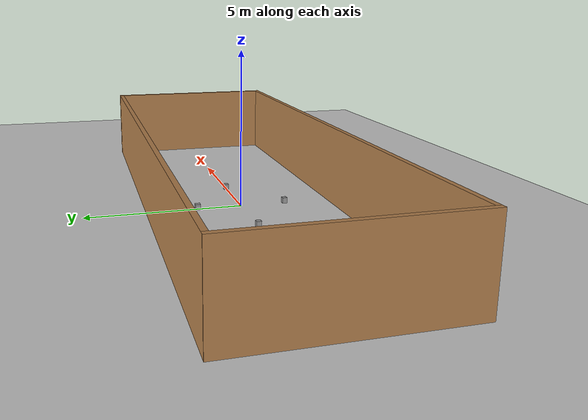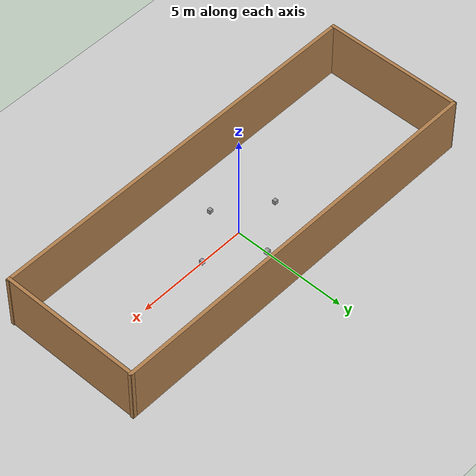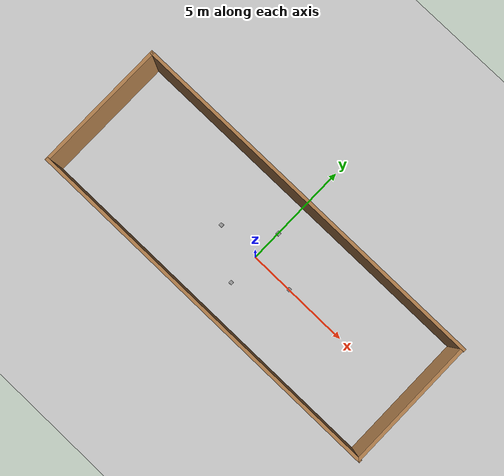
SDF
<sdf version="1.6">
 <world name="default">
  <light name="sun" type="directional">
   <pose>0 0 10 0 -0 0</pose>
   <diffuse>0.8 0.8 0.8 1</diffuse>
   <specular>0.2 0.2 0.2 1</specular>
   <attenuation>
    <range>1000</range>
    <constant>0.9</constant>
    <linear>0.01</linear>
    <quadratic>0.001</quadratic>
   </attenuation>
   <direction>-0.5 0.1 -0.9</direction>
  </light>
  <model name="ground_plane">
   <static>1</static>
   <link name="link">
    <collision name="collision">
     <geometry><plane><normal>0 0 1</normal><size>100 100</size></plane></geometry>
     <surface>
      <contact><collide_bitmask>65535</collide_bitmask></contact>
      <friction><ode><mu>100</mu><mu2>50</mu2></ode></friction>
     </surface>
    </collision>
    <visual name="visual">
     <cast_shadows>0</cast_shadows>
     <geometry><plane><normal>0 0 1</normal><size>100 100</size></plane></geometry>
     <material>
      <script><uri>file://media/materials/scripts/gazebo.material</uri><name>Gazebo/Grey</name></script>
     </material>
    </visual>
   </link>
  </model>
  <gravity>0 0 -9.8</gravity>
  <magnetic_field>6e-06 2.3e-05 -4.2e-05</magnetic_field>
  <atmosphere type="adiabatic"/>
  <physics name="default_physics" default="0" type="ode">
   <max_step_size>0.001</max_step_size>
   <real_time_factor>1</real_time_factor>
   <real_time_update_rate>1000</real_time_update_rate>
  </physics>
  <scene><ambient>0.4 0.4 0.4 1</ambient><background>0.7 0.7 0.7 1</background><shadows>1</shadows></scene>
  <spherical_coordinates>
   <surface_model>EARTH_WGS84</surface_model>
   <latitude_deg>0</latitude_deg>
   <longitude_deg>0</longitude_deg>
   <elevation>0</elevation>
   <heading_deg>0</heading_deg>
  </spherical_coordinates>
  <model name="Competition_map.world">
   <pose>-0.033405 -0.02331 0 0 -0 0</pose>
   <link name="Wall_10">
    <collision name="Wall_10_Collision">
     <geometry><box><size>6.18858 0.15 2.5</size></box></geometry>
     <pose>0 0 1.25 0 -0 0</pose>
    </collision>
    <visual name="Wall_10_Visual">
     <pose>0 0 1.25 0 -0 0</pose>
     <geometry><box><size>6.18858 0.15 2.5</size></box></geometry>
     <material>
      <script><uri>file://media/materials/scripts/gazebo.material</uri><name>Gazebo/Wood</name></script>
      <ambient>1 1 1 1</ambient>
     </material>
     <meta><layer>0</layer></meta>
    </visual>
    <pose>-8.64314 0 0 0 -0 -1.5708</pose>
   </link>
   <link name="Wall_11">
    <collision name="Wall_11_Collision">
     <geometry><box><size>17.4011 0.15 2.5</size></box></geometry>
     <pose>0 0 1.25 0 -0 0</pose>
    </collision>
    <visual name="Wall_11_Visual">
     <pose>0 0 1.25 0 -0 0</pose>
     <geometry><box><size>17.4011 0.15 2.5</size></box></geometry>
     <material>
      <script><uri>file://media/materials/scripts/gazebo.material</uri><name>Gazebo/Wood</name></script>
      <ambient>1 1 1 1</ambient>
     </material>
     <meta><layer>0</layer></meta>
    </visual>
    <pose>0.01759 -3.01929 0 0 -0 0</pose>
   </link>
   <link name="Wall_12">
    <collision name="Wall_12_Collision">
     <geometry><box><size>6.18858 0.15 2.5</size></box></geometry>
     <pose>0 0 1.25 0 -0 0</pose>
    </collision>
    <visual name="Wall_12_Visual">
     <pose>0 0 1.25 0 -0 0</pose>
     <geometry><box><size>6.18858 0.15 2.5</size></box></geometry>
     <material>
      <script><uri>file://media/materials/scripts/gazebo.material</uri><name>Gazebo/Wood</name></script>
      <ambient>1 1 1 1</ambient>
     </material>
     <meta><layer>0</layer></meta>
    </visual>
    <pose>8.60796 0 0 0 -0 1.5708</pose>
   </link>
   <link name="Wall_13">
    <collision name="Wall_13_Collision">
     <geometry><box><size>17.4011 0.15 2.5</size></box></geometry>
     <pose>0 0 1.25 0 -0 0</pose>
    </collision>
    <visual name="Wall_13_Visual">
     <pose>0 0 1.25 0 -0 0</pose>
     <geometry><box><size>17.4011 0.15 2.5</size></box></geometry>
     <material>
      <script><uri>file://media/materials/scripts/gazebo.material</uri><name>Gazebo/Wood</name></script>
      <ambient>1 1 1 1</ambient>
     </material>
     <meta><layer>0</layer></meta>
    </visual>
    <pose>0.01759 3.01929 0 0 -0 3.14159</pose>
   </link>
   <static>1</static>
  </model>
  <model name="unit_box">
   <pose>0.007304 1.42545 0.090008 5e-06 -1e-06 -0.000126</pose>
   <link name="link">
    <inertial>
     <mass>1</mass>
     <inertia>
      <ixx>0.166667</ixx>
      <ixy>0</ixy>
      <ixz>0</ixz>
      <iyy>0.166667</iyy>
      <iyz>0</iyz>
      <izz>0.166667</izz>
     </inertia>
    </inertial>
    <collision name="collision">
     <geometry><box><size>0.178169 0.169943 0.180016</size></box></geometry>
    </collision>
    <visual name="visual">
     <geometry><box><size>0.178169 0.169943 0.180016</size></box></geometry>
     <material>
      <script><name>Gazebo/Grey</name><uri>file://media/materials/scripts/gazebo.material</uri></script>
     </material>
    </visual>
   </link>
  </model>
  <model name="unit_box_clone">
   <pose>0.007085 -1.48008 0.090008 -4e-06 1e-06 -0.000117</pose>
   <link name="link">
    <inertial>
     <mass>1</mass>
     <inertia>
      <ixx>0.166667</ixx>
      <ixy>0</ixy>
      <ixz>0</ixz>
      <iyy>0.166667</iyy>
      <iyz>0</iyz>
      <izz>0.166667</izz>
     </inertia>
    </inertial>
    <collision name="collision">
     <geometry><box><size>0.154562 0.156899 0.180016</size></box></geometry>
    </collision>
    <visual name="visual">
     <geometry><box><size>0.154562 0.156899 0.180016</size></box></geometry>
     <material>
      <script><name>Gazebo/Grey</name><uri>file://media/materials/scripts/gazebo.material</uri></script>
     </material>
    </visual>
   </link>
  </model>
  <model name="unit_box_clone_0">
   <pose>-2.00107 -0.00106 0.090008 -1e-06 4e-06 -0.000118</pose>
   <link name="link">
    <inertial>
     <mass>1</mass>
     <inertia>
      <ixx>0.166667</ixx>
      <ixy>0</ixy>
      <ixz>0</ixz>
      <iyy>0.166667</iyy>
      <iyz>0</iyz>
      <izz>0.166667</izz>
     </inertia>
    </inertial>
    <collision name="collision">
     <geometry><box><size>0.154562 0.156899 0.180016</size></box></geometry>
    </collision>
    <visual name="visual">
     <geometry><box><size>0.154562 0.156899 0.180016</size></box></geometry>
     <material>
      <script><name>Gazebo/Grey</name><uri>file://media/materials/scripts/gazebo.material</uri></script>
     </material>
    </visual>
   </link>
  </model>
  <model name="unit_box_clone_1">
   <pose>1.9951 0.006263 0.090008 -1e-06 -4e-06 -0.00012</pose>
   <link name="link">
    <inertial>
     <mass>1</mass>
     <inertia>
      <ixx>0.166667</ixx>
      <ixy>0</ixy>
      <ixz>0</ixz>
      <iyy>0.166667</iyy>
      <iyz>0</iyz>
      <izz>0.166667</izz>
     </inertia>
    </inertial>
    <collision name="collision">
     <geometry><box><size>0.154562 0.156899 0.180016</size></box></geometry>
    </collision>
    <visual name="visual">
     <geometry><box><size>0.154562 0.156899 0.180016</size></box></geometry>
     <material>
      <script><name>Gazebo/Grey</name><uri>file://media/materials/scripts/gazebo.material</uri></script>
     </material>
    </visual>
   </link>
  </model>
  <light name="user_directional_light_0" type="directional">
   <pose>12.4759 -7.27356 1 0 -0 0</pose>
   <diffuse>0.5 0.5 0.5 1</diffuse>
   <specular>0.1 0.1 0.1 1</specular>
   <direction>0.1 0.1 -0.9</direction>
   <attenuation>
    <range>20</range>
    <constant>0.5</constant>
    <linear>0.01</linear>
    <quadratic>0.001</quadratic>
   </attenuation>
  </light>
  <light name="user_point_light_0" type="point">
   <pose>12.5476 -6.97731 1 0 -0 0</pose>
   <diffuse>0.5 0.5 0.5 1</diffuse>
   <specular>0.1 0.1 0.1 1</specular>
   <attenuation>
    <range>20</range>
    <constant>0.5</constant>
    <linear>0.01</linear>
    <quadratic>0.001</quadratic>
   </attenuation>
   <cast_shadows>0</cast_shadows>
   <direction>0 0 -1</direction>
  </light>
  <light name="user_directional_light_1" type="directional">
   <pose>-0.282872 0.367566 1 0 -0 0</pose>
   <diffuse>0.5 0.5 0.5 1</diffuse>
   <specular>0.1 0.1 0.1 1</specular>
   <direction>0.1 0.1 -0.9</direction>
   <attenuation>
    <range>20</range>
    <constant>0.5</constant>
    <linear>0.01</linear>
    <quadratic>0.001</quadratic>
   </attenuation>
  </light>
  <light name="user_point_light_1" type="point">
   <pose>10.5154 -5.18401 1 0 -0 0</pose>
   <diffuse>0.5 0.5 0.5 1</diffuse>
   <specular>0.1 0.1 0.1 1</specular>
   <attenuation>
    <range>20</range>
    <constant>0.5</constant>
    <linear>0.01</linear>
    <quadratic>0.001</quadratic>
   </attenuation>
   <cast_shadows>0</cast_shadows>
   <direction>0 0 -1</direction>
  </light>
  <light name="user_directional_light_2" type="directional">
   <pose>-1.84881 -1.1948 1 0 -0 0</pose>
   <diffuse>0.5 0.5 0.5 1</diffuse>
   <specular>0.1 0.1 0.1 1</specular>
   <direction>0.1 0.1 -0.9</direction>
   <attenuation>
    <range>20</range>
    <constant>0.5</constant>
    <linear>0.01</linear>
    <quadratic>0.001</quadratic>
   </attenuation>
  </light>
 </world>
</sdf>
